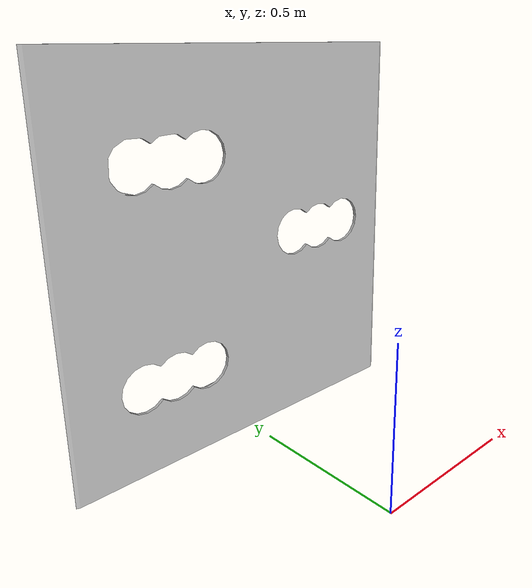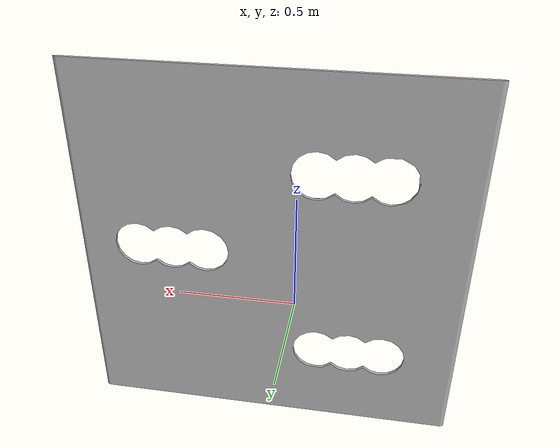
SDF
<?xml version="1.0" ?>
<sdf version="1.4">
  <model name="nist">
    <static>true</static>
    <link name="nist_maze_wall_triple_holes_120_link">
      <pose>0 0 0.0 0 0 0</pose>
      <collision name="collision">
        <geometry>
          <mesh>
            <uri>model://nist_maze_wall_triple_holes_120/meshes/nist_maze_wall_triple_holes_120.dae</uri>
            <scale>1 1 1</scale>
          </mesh>
        </geometry>
      </collision>
      <visual name="visual">
        <geometry>
          <mesh>
            <uri>model://nist_maze_wall_triple_holes_120/meshes/nist_maze_wall_triple_holes_120.dae</uri>
            <scale>1 1 1</scale>
          </mesh>
        </geometry>
      </visual>
    </link>
  </model>
</sdf>
